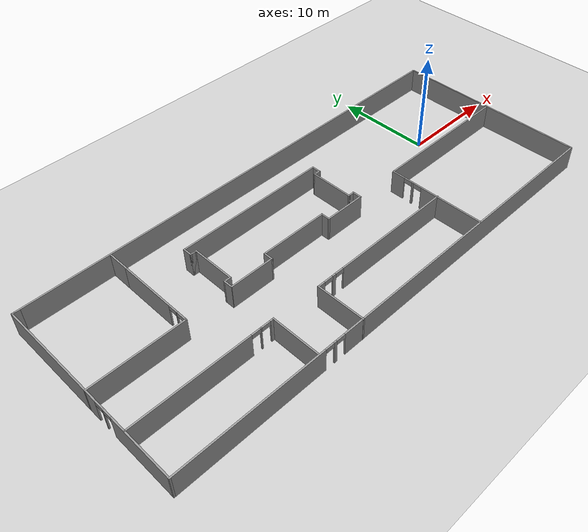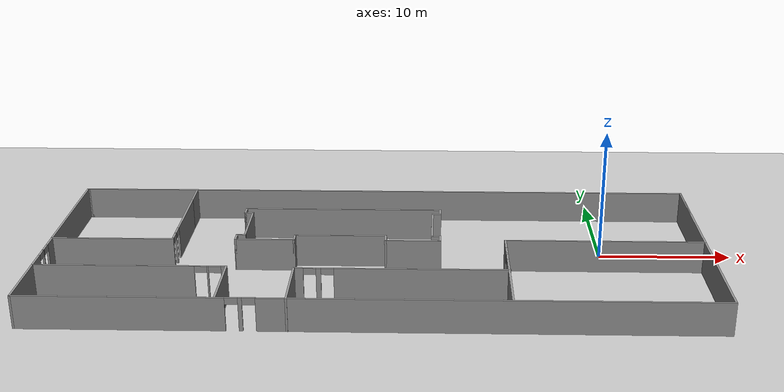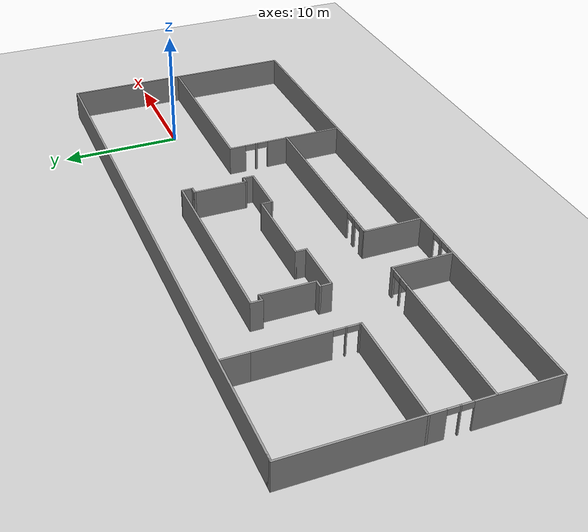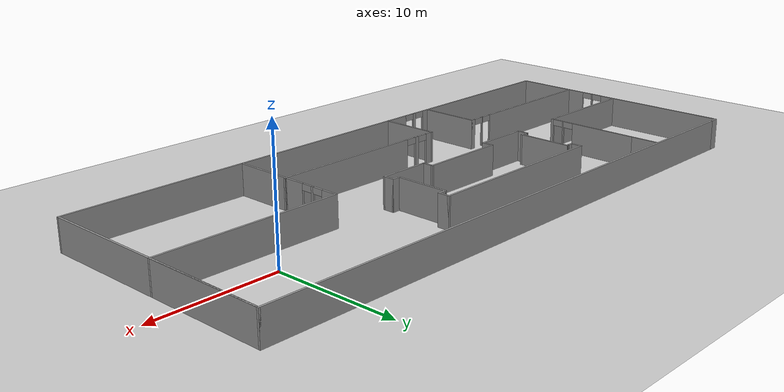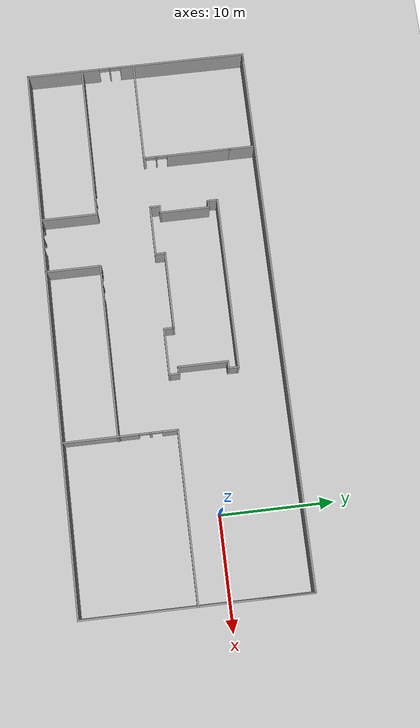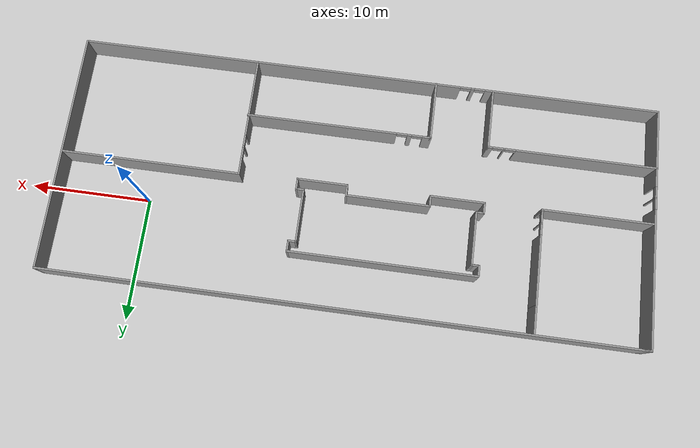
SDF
<sdf version="1.6">
 <world name="default">
  <model name="ground_plane">
   <static>1</static>
   <link name="link">
    <collision name="collision">
     <geometry><plane><normal>0 0 1</normal><size>100 100</size></plane></geometry>
     <surface><friction><ode><mu>100</mu><mu2>50</mu2></ode></friction></surface>
    </collision>
    <visual name="visual">
     <cast_shadows>0</cast_shadows>
     <geometry><plane><normal>0 0 1</normal><size>100 100</size></plane></geometry>
     <material>
      <script><uri>file://media/materials/scripts/gazebo.material</uri><name>Gazebo/Grey</name></script>
     </material>
    </visual>
   </link>
  </model>
  <model name="build1_0">
   <pose>-17.042 -2.82308 0 0 -0 0</pose>
   <link name="Wall_0">
    <collision name="Wall_0_Collision">
     <geometry><box><size>48.75 0.15 2.5</size></box></geometry>
     <pose>0 0 1.25 0 -0 0</pose>
    </collision>
    <visual name="Wall_0_Visual">
     <pose>0 0 1.25 0 -0 0</pose>
     <geometry><box><size>48.75 0.15 2.5</size></box></geometry>
     <material>
      <script><uri>file://media/materials/scripts/gazebo.material</uri><name>Gazebo/Grey</name></script>
      <ambient>1 1 1 1</ambient>
     </material>
    </visual>
    <pose>0.128151 9.93761 0 0 -0 0</pose>
   </link>
   <link name="Wall_10">
    <collision name="Wall_10_Collision">
     <geometry><box><size>0.75 0.15 2.5</size></box></geometry>
     <pose>0 0 1.25 0 -0 0</pose>
    </collision>
    <visual name="Wall_10_Visual">
     <pose>0 0 1.25 0 -0 0</pose>
     <geometry><box><size>0.75 0.15 2.5</size></box></geometry>
     <material>
      <script><uri>file://media/materials/scripts/gazebo.material</uri><name>Gazebo/Grey</name></script>
      <ambient>1 1 1 1</ambient>
     </material>
    </visual>
    <pose>-24.1218 9.93761 0 0 -0 0</pose>
   </link>
   <link name="Wall_101">
    <collision name="Wall_101_Collision">
     <geometry><box><size>10 0.15 2.5</size></box></geometry>
     <pose>0 0 1.25 0 -0 0</pose>
    </collision>
    <visual name="Wall_101_Visual">
     <pose>0 0 1.25 0 -0 0</pose>
     <geometry><box><size>10 0.15 2.5</size></box></geometry>
     <material>
      <script><uri>file://media/materials/scripts/gazebo.material</uri><name>Gazebo/Grey</name></script>
      <ambient>1 1 1 1</ambient>
     </material>
    </visual>
    <pose>24.4281 5.01261 0 0 0 -1.5708</pose>
   </link>
   <link name="Wall_102">
    <collision name="Wall_102_Collision">
     <geometry><box><size>15 0.15 2.5</size></box></geometry>
     <pose>0 0 1.25 0 -0 0</pose>
    </collision>
    <visual name="Wall_102_Visual">
     <pose>0 0 1.25 0 -0 0</pose>
     <geometry><box><size>15 0.15 2.5</size></box></geometry>
     <material>
      <script><uri>file://media/materials/scripts/gazebo.material</uri><name>Gazebo/Grey</name></script>
      <ambient>1 1 1 1</ambient>
     </material>
    </visual>
    <pose>17.0032 0.087612 0 0 -0 3.14159</pose>
   </link>
   <link name="Wall_103">
    <pose>9.57815 -2.46239 0 0 0 -1.5708</pose>
    <visual name="Wall_103_Visual_0">
     <pose>-1.90662 0 1.25 0 -0 0</pose>
     <geometry><box><size>1.43676 0.15 2.5</size></box></geometry>
     <material>
      <script><uri>file://media/materials/scripts/gazebo.material</uri><name>Gazebo/Grey</name></script>
      <ambient>1 1 1 1</ambient>
     </material>
    </visual>
    <collision name="Wall_103_Collision_0">
     <geometry><box><size>1.43676 0.15 2.5</size></box></geometry>
     <pose>-1.90662 0 1.25 0 -0 0</pose>
    </collision>
    <visual name="Wall_103_Visual_1">
     <pose>-0.188989 0 1.25 0 -0 0</pose>
     <geometry><box><size>0.198503 0.15 2.5</size></box></geometry>
     <material>
      <script><uri>file://media/materials/scripts/gazebo.material</uri><name>Gazebo/Grey</name></script>
      <ambient>1 1 1 1</ambient>
     </material>
    </visual>
    <collision name="Wall_103_Collision_1">
     <geometry><box><size>0.198503 0.15 2.5</size></box></geometry>
     <pose>-0.188989 0 1.25 0 -0 0</pose>
    </collision>
    <visual name="Wall_103_Visual_2">
     <pose>1.71763 0 1.25 0 -0 0</pose>
     <geometry><box><size>1.81474 0.15 2.5</size></box></geometry>
     <material>
      <script><uri>file://media/materials/scripts/gazebo.material</uri><name>Gazebo/Grey</name></script>
      <ambient>1 1 1 1</ambient>
     </material>
    </visual>
    <collision name="Wall_103_Collision_2">
     <geometry><box><size>1.81474 0.15 2.5</size></box></geometry>
     <pose>1.71763 0 1.25 0 -0 0</pose>
    </collision>
    <visual name="Wall_103_Visual_3">
     <pose>-0.73824 0 2.25 0 -0 0</pose>
     <geometry><box><size>0.9 0.15 0.5</size></box></geometry>
     <material>
      <script><uri>file://media/materials/scripts/gazebo.material</uri><name>Gazebo/Grey</name></script>
      <ambient>1 1 1 1</ambient>
     </material>
    </visual>
    <collision name="Wall_103_Collision_3">
     <geometry><box><size>0.9 0.15 0.5</size></box></geometry>
     <pose>-0.73824 0 2.25 0 -0 0</pose>
    </collision>
    <visual name="Wall_103_Visual_4">
     <pose>0.360263 0 2.25 0 -0 0</pose>
     <geometry><box><size>0.9 0.15 0.5</size></box></geometry>
     <material>
      <script><uri>file://media/materials/scripts/gazebo.material</uri><name>Gazebo/Grey</name></script>
      <ambient>1 1 1 1</ambient>
     </material>
    </visual>
    <collision name="Wall_103_Collision_4">
     <geometry><box><size>0.9 0.15 0.5</size></box></geometry>
     <pose>0.360263 0 2.25 0 -0 0</pose>
    </collision>
   </link>
   <link name="Wall_105">
    <pose>1.96209 -5.08761 0 0 -0 0</pose>
    <visual name="Wall_105_Visual_0">
     <pose>-7.37124 0 1.25 0 -0 0</pose>
     <geometry><box><size>0.757518 0.15 2.5</size></box></geometry>
     <material>
      <script><uri>file://media/materials/scripts/gazebo.material</uri><name>Gazebo/Grey</name></script>
      <ambient>1 1 1 1</ambient>
     </material>
    </visual>
    <collision name="Wall_105_Collision_0">
     <geometry><box><size>0.757518 0.15 2.5</size></box></geometry>
     <pose>-7.37124 0 1.25 0 -0 0</pose>
    </collision>
    <visual name="Wall_105_Visual_1">
     <pose>-5.91186 0 1.25 0 -0 0</pose>
     <geometry><box><size>0.361245 0.15 2.5</size></box></geometry>
     <material>
      <script><uri>file://media/materials/scripts/gazebo.material</uri><name>Gazebo/Grey</name></script>
      <ambient>1 1 1 1</ambient>
     </material>
    </visual>
    <collision name="Wall_105_Collision_1">
     <geometry><box><size>0.361245 0.15 2.5</size></box></geometry>
     <pose>-5.91186 0 1.25 0 -0 0</pose>
    </collision>
    <visual name="Wall_105_Visual_2">
     <pose>1.45938 0 1.25 0 -0 0</pose>
     <geometry><box><size>12.5812 0.15 2.5</size></box></geometry>
     <material>
      <script><uri>file://media/materials/scripts/gazebo.material</uri><name>Gazebo/Grey</name></script>
      <ambient>1 1 1 1</ambient>
     </material>
    </visual>
    <collision name="Wall_105_Collision_2">
     <geometry><box><size>12.5812 0.15 2.5</size></box></geometry>
     <pose>1.45938 0 1.25 0 -0 0</pose>
    </collision>
    <visual name="Wall_105_Visual_3">
     <pose>-6.54248 0 2.25 0 -0 0</pose>
     <geometry><box><size>0.9 0.15 0.5</size></box></geometry>
     <material>
      <script><uri>file://media/materials/scripts/gazebo.material</uri><name>Gazebo/Grey</name></script>
      <ambient>1 1 1 1</ambient>
     </material>
    </visual>
    <collision name="Wall_105_Collision_3">
     <geometry><box><size>0.9 0.15 0.5</size></box></geometry>
     <pose>-6.54248 0 2.25 0 -0 0</pose>
    </collision>
    <visual name="Wall_105_Visual_4">
     <pose>-5.28124 0 2.25 0 -0 0</pose>
     <geometry><box><size>0.9 0.15 0.5</size></box></geometry>
     <material>
      <script><uri>file://media/materials/scripts/gazebo.material</uri><name>Gazebo/Grey</name></script>
      <ambient>1 1 1 1</ambient>
     </material>
    </visual>
    <collision name="Wall_105_Collision_4">
     <geometry><box><size>0.9 0.15 0.5</size></box></geometry>
     <pose>-5.28124 0 2.25 0 -0 0</pose>
    </collision>
   </link>
   <link name="Wall_14">
    <collision name="Wall_14_Collision">
     <geometry><box><size>9.25 0.15 2.5</size></box></geometry>
     <pose>0 0 1.25 0 -0 0</pose>
    </collision>
    <visual name="Wall_14_Visual">
     <pose>0 0 1.25 0 -0 0</pose>
     <geometry><box><size>9.25 0.15 2.5</size></box></geometry>
     <material>
      <script><uri>file://media/materials/scripts/gazebo.material</uri><name>Gazebo/Grey</name></script>
      <ambient>1 1 1 1</ambient>
     </material>
    </visual>
    <pose>-19.8782 -0.176763 0 0 -0 3.14159</pose>
   </link>
   <link name="Wall_16">
    <pose>-15.3282 3.74824 0 0 -0 1.5708</pose>
    <visual name="Wall_16_Visual_0">
     <pose>-3.87767 0 1.25 0 -0 0</pose>
     <geometry><box><size>0.244662 0.15 2.5</size></box></geometry>
     <material>
      <script><uri>file://media/materials/scripts/gazebo.material</uri><name>Gazebo/Grey</name></script>
      <ambient>1 1 1 1</ambient>
     </material>
    </visual>
    <collision name="Wall_16_Collision_0">
     <geometry><box><size>0.244662 0.15 2.5</size></box></geometry>
     <pose>-3.87767 0 1.25 0 -0 0</pose>
    </collision>
    <visual name="Wall_16_Visual_1">
     <pose>-2.79773 0 1.25 0 -0 0</pose>
     <geometry><box><size>0.11521 0.15 2.5</size></box></geometry>
     <material>
      <script><uri>file://media/materials/scripts/gazebo.material</uri><name>Gazebo/Grey</name></script>
      <ambient>1 1 1 1</ambient>
     </material>
    </visual>
    <collision name="Wall_16_Collision_1">
     <geometry><box><size>0.11521 0.15 2.5</size></box></geometry>
     <pose>-2.79773 0 1.25 0 -0 0</pose>
    </collision>
    <visual name="Wall_16_Visual_2">
     <pose>1.07994 0 1.25 0 -0 0</pose>
     <geometry><box><size>5.84013 0.15 2.5</size></box></geometry>
     <material>
      <script><uri>file://media/materials/scripts/gazebo.material</uri><name>Gazebo/Grey</name></script>
      <ambient>1 1 1 1</ambient>
     </material>
    </visual>
    <collision name="Wall_16_Collision_2">
     <geometry><box><size>5.84013 0.15 2.5</size></box></geometry>
     <pose>1.07994 0 1.25 0 -0 0</pose>
    </collision>
    <visual name="Wall_16_Visual_3">
     <pose>-3.30534 0 2.25 0 -0 0</pose>
     <geometry><box><size>0.9 0.15 0.5</size></box></geometry>
     <material>
      <script><uri>file://media/materials/scripts/gazebo.material</uri><name>Gazebo/Grey</name></script>
      <ambient>1 1 1 1</ambient>
     </material>
    </visual>
    <collision name="Wall_16_Collision_3">
     <geometry><box><size>0.9 0.15 0.5</size></box></geometry>
     <pose>-3.30534 0 2.25 0 -0 0</pose>
    </collision>
    <visual name="Wall_16_Visual_4">
     <pose>-2.29013 0 2.25 0 -0 0</pose>
     <geometry><box><size>0.9 0.15 0.5</size></box></geometry>
     <material>
      <script><uri>file://media/materials/scripts/gazebo.material</uri><name>Gazebo/Grey</name></script>
      <ambient>1 1 1 1</ambient>
     </material>
    </visual>
    <collision name="Wall_16_Collision_4">
     <geometry><box><size>0.9 0.15 0.5</size></box></geometry>
     <pose>-2.29013 0 2.25 0 -0 0</pose>
    </collision>
   </link>
   <link name="Wall_19">
    <collision name="Wall_19_Collision">
     <geometry><box><size>2.25 0.15 2.5</size></box></geometry>
     <pose>0 0 1.25 0 -0 0</pose>
    </collision>
    <visual name="Wall_19_Visual">
     <pose>0 0 1.25 0 -0 0</pose>
     <geometry><box><size>2.25 0.15 2.5</size></box></geometry>
     <material>
      <script><uri>file://media/materials/scripts/gazebo.material</uri><name>Gazebo/Grey</name></script>
      <ambient>1 1 1 1</ambient>
     </material>
    </visual>
    <pose>-15.3282 8.72324 0 0 -0 1.5708</pose>
   </link>
   <link name="Wall_21">
    <pose>-17.4625 -4.93332 0 0 -0 0</pose>
    <visual name="Wall_21_Visual_0">
     <pose>-1.1775 0 1.25 0 -0 0</pose>
     <geometry><box><size>11.645 0.15 2.5</size></box></geometry>
     <material>
      <script><uri>file://media/materials/scripts/gazebo.material</uri><name>Gazebo/Grey</name></script>
      <ambient>1 1 1 1</ambient>
     </material>
    </visual>
    <collision name="Wall_21_Collision_0">
     <geometry><box><size>11.645 0.15 2.5</size></box></geometry>
     <pose>-1.1775 0 1.25 0 -0 0</pose>
    </collision>
    <visual name="Wall_21_Visual_1">
     <pose>5.6026 0 1.25 0 -0 0</pose>
     <geometry><box><size>0.115209 0.15 2.5</size></box></geometry>
     <material>
      <script><uri>file://media/materials/scripts/gazebo.material</uri><name>Gazebo/Grey</name></script>
      <ambient>1 1 1 1</ambient>
     </material>
    </visual>
    <collision name="Wall_21_Collision_1">
     <geometry><box><size>0.115209 0.15 2.5</size></box></geometry>
     <pose>5.6026 0 1.25 0 -0 0</pose>
    </collision>
    <visual name="Wall_21_Visual_2">
     <pose>6.7801 0 1.25 0 -0 0</pose>
     <geometry><box><size>0.439798 0.15 2.5</size></box></geometry>
     <material>
      <script><uri>file://media/materials/scripts/gazebo.material</uri><name>Gazebo/Grey</name></script>
      <ambient>1 1 1 1</ambient>
     </material>
    </visual>
    <collision name="Wall_21_Collision_2">
     <geometry><box><size>0.439798 0.15 2.5</size></box></geometry>
     <pose>6.7801 0 1.25 0 -0 0</pose>
    </collision>
    <visual name="Wall_21_Visual_3">
     <pose>5.09499 0 2.25 0 -0 0</pose>
     <geometry><box><size>0.9 0.15 0.5</size></box></geometry>
     <material>
      <script><uri>file://media/materials/scripts/gazebo.material</uri><name>Gazebo/Grey</name></script>
      <ambient>1 1 1 1</ambient>
     </material>
    </visual>
    <collision name="Wall_21_Collision_3">
     <geometry><box><size>0.9 0.15 0.5</size></box></geometry>
     <pose>5.09499 0 2.25 0 -0 0</pose>
    </collision>
    <visual name="Wall_21_Visual_4">
     <pose>6.1102 0 2.25 0 -0 0</pose>
     <geometry><box><size>0.9 0.15 0.5</size></box></geometry>
     <material>
      <script><uri>file://media/materials/scripts/gazebo.material</uri><name>Gazebo/Grey</name></script>
      <ambient>1 1 1 1</ambient>
     </material>
    </visual>
    <collision name="Wall_21_Collision_4">
     <geometry><box><size>0.9 0.15 0.5</size></box></geometry>
     <pose>6.1102 0 2.25 0 -0 0</pose>
    </collision>
   </link>
   <link name="Wall_22">
    <collision name="Wall_22_Collision">
     <geometry><box><size>5 0.15 2.5</size></box></geometry>
     <pose>0 0 1.25 0 -0 0</pose>
    </collision>
    <visual name="Wall_22_Visual">
     <pose>0 0 1.25 0 -0 0</pose>
     <geometry><box><size>5 0.15 2.5</size></box></geometry>
     <material>
      <script><uri>file://media/materials/scripts/gazebo.material</uri><name>Gazebo/Grey</name></script>
      <ambient>1 1 1 1</ambient>
     </material>
    </visual>
    <pose>-10.5375 -7.35832 0 0 0 -1.5708</pose>
   </link>
   <link name="Wall_24">
    <collision name="Wall_24_Collision">
     <geometry><box><size>5 0.15 2.5</size></box></geometry>
     <pose>0 0 1.25 0 -0 0</pose>
    </collision>
    <visual name="Wall_24_Visual">
     <pose>0 0 1.25 0 -0 0</pose>
     <geometry><box><size>5 0.15 2.5</size></box></geometry>
     <material>
      <script><uri>file://media/materials/scripts/gazebo.material</uri><name>Gazebo/Grey</name></script>
      <ambient>1 1 1 1</ambient>
     </material>
    </visual>
    <pose>-5.71291 -7.51261 0 0 -0 1.5708</pose>
   </link>
   <link name="Wall_26">
    <collision name="Wall_26_Collision">
     <geometry><box><size>5 0.15 2.5</size></box></geometry>
     <pose>0 0 1.25 0 -0 0</pose>
    </collision>
    <visual name="Wall_26_Visual">
     <pose>0 0 1.25 0 -0 0</pose>
     <geometry><box><size>5 0.15 2.5</size></box></geometry>
     <material>
      <script><uri>file://media/materials/scripts/gazebo.material</uri><name>Gazebo/Grey</name></script>
      <ambient>1 1 1 1</ambient>
     </material>
    </visual>
    <pose>9.57927 -7.43124 0 0 0 -1.5708</pose>
   </link>
   <link name="Wall_69">
    <collision name="Wall_69_Collision">
     <geometry><box><size>4.5 0.15 2.5</size></box></geometry>
     <pose>0 0 1.25 0 -0 0</pose>
    </collision>
    <visual name="Wall_69_Visual">
     <pose>0 0 1.25 0 -0 0</pose>
     <geometry><box><size>4.5 0.15 2.5</size></box></geometry>
     <material>
      <script><uri>file://media/materials/scripts/gazebo.material</uri><name>Gazebo/Grey</name></script>
      <ambient>1 1 1 1</ambient>
     </material>
    </visual>
    <pose>-8.40817 -0.110852 0 0 -0 0</pose>
   </link>
   <link name="Wall_7">
    <collision name="Wall_7_Collision">
     <geometry><box><size>20 0.15 2.5</size></box></geometry>
     <pose>0 0 1.25 0 -0 0</pose>
    </collision>
    <visual name="Wall_7_Visual">
     <pose>0 0 1.25 0 -0 0</pose>
     <geometry><box><size>20 0.15 2.5</size></box></geometry>
     <material>
      <script><uri>file://media/materials/scripts/gazebo.material</uri><name>Gazebo/Grey</name></script>
      <ambient>1 1 1 1</ambient>
     </material>
    </visual>
    <pose>24.4281 0.012612 0 0 0 -1.5708</pose>
   </link>
   <link name="Wall_70">
    <collision name="Wall_70_Collision">
     <geometry><box><size>1 0.15 2.5</size></box></geometry>
     <pose>0 0 1.25 0 -0 0</pose>
    </collision>
    <visual name="Wall_70_Visual">
     <pose>0 0 1.25 0 -0 0</pose>
     <geometry><box><size>1 0.15 2.5</size></box></geometry>
     <material>
      <script><uri>file://media/materials/scripts/gazebo.material</uri><name>Gazebo/Grey</name></script>
      <ambient>1 1 1 1</ambient>
     </material>
    </visual>
    <pose>-6.23316 0.314148 0 0 -0 1.5708</pose>
   </link>
   <link name="Wall_78">
    <collision name="Wall_78_Collision">
     <geometry><box><size>0.75 0.15 2.5</size></box></geometry>
     <pose>0 0 1.25 0 -0 0</pose>
    </collision>
    <visual name="Wall_78_Visual">
     <pose>0 0 1.25 0 -0 0</pose>
     <geometry><box><size>0.75 0.15 2.5</size></box></geometry>
     <material>
      <script><uri>file://media/materials/scripts/gazebo.material</uri><name>Gazebo/Grey</name></script>
      <ambient>1 1 1 1</ambient>
     </material>
    </visual>
    <pose>4.41683 0.739148 0 0 -0 3.14159</pose>
   </link>
   <link name="Wall_79">
    <collision name="Wall_79_Collision">
     <geometry><box><size>4.5 0.15 2.5</size></box></geometry>
     <pose>0 0 1.25 0 -0 0</pose>
    </collision>
    <visual name="Wall_79_Visual">
     <pose>0 0 1.25 0 -0 0</pose>
     <geometry><box><size>4.5 0.15 2.5</size></box></geometry>
     <material>
      <script><uri>file://media/materials/scripts/gazebo.material</uri><name>Gazebo/Grey</name></script>
      <ambient>1 1 1 1</ambient>
     </material>
    </visual>
    <pose>4.11684 2.91415 0 0 -0 1.5708</pose>
   </link>
   <link name="Wall_8">
    <pose>0.003151 -9.91239 0 0 -0 3.14159</pose>
    <visual name="Wall_8_Visual_0">
     <pose>-8.35572 0 1.25 0 -0 0</pose>
     <geometry><box><size>32.2886 0.15 2.5</size></box></geometry>
     <material>
      <script><uri>file://media/materials/scripts/gazebo.material</uri><name>Gazebo/Grey</name></script>
      <ambient>1 1 1 1</ambient>
     </material>
    </visual>
    <collision name="Wall_8_Collision_0">
     <geometry><box><size>32.2886 0.15 2.5</size></box></geometry>
     <pose>-8.35572 0 1.25 0 -0 0</pose>
    </collision>
    <visual name="Wall_8_Visual_1">
     <pose>8.82849 0 1.25 0 -0 0</pose>
     <geometry><box><size>0.279873 0.15 2.5</size></box></geometry>
     <material>
      <script><uri>file://media/materials/scripts/gazebo.material</uri><name>Gazebo/Grey</name></script>
      <ambient>1 1 1 1</ambient>
     </material>
    </visual>
    <collision name="Wall_8_Collision_1">
     <geometry><box><size>0.279873 0.15 2.5</size></box></geometry>
     <pose>8.82849 0 1.25 0 -0 0</pose>
    </collision>
    <visual name="Wall_8_Visual_2">
     <pose>17.1842 0 1.25 0 -0 0</pose>
     <geometry><box><size>14.6316 0.15 2.5</size></box></geometry>
     <material>
      <script><uri>file://media/materials/scripts/gazebo.material</uri><name>Gazebo/Grey</name></script>
      <ambient>1 1 1 1</ambient>
     </material>
    </visual>
    <collision name="Wall_8_Collision_2">
     <geometry><box><size>14.6316 0.15 2.5</size></box></geometry>
     <pose>17.1842 0 1.25 0 -0 0</pose>
    </collision>
    <visual name="Wall_8_Visual_3">
     <pose>8.23855 0 2.25 0 -0 0</pose>
     <geometry><box><size>0.9 0.15 0.5</size></box></geometry>
     <material>
      <script><uri>file://media/materials/scripts/gazebo.material</uri><name>Gazebo/Grey</name></script>
      <ambient>1 1 1 1</ambient>
     </material>
    </visual>
    <collision name="Wall_8_Collision_3">
     <geometry><box><size>0.9 0.15 0.5</size></box></geometry>
     <pose>8.23855 0 2.25 0 -0 0</pose>
    </collision>
    <visual name="Wall_8_Visual_4">
     <pose>9.41842 0 2.25 0 -0 0</pose>
     <geometry><box><size>0.9 0.15 0.5</size></box></geometry>
     <material>
      <script><uri>file://media/materials/scripts/gazebo.material</uri><name>Gazebo/Grey</name></script>
      <ambient>1 1 1 1</ambient>
     </material>
    </visual>
    <collision name="Wall_8_Collision_4">
     <geometry><box><size>0.9 0.15 0.5</size></box></geometry>
     <pose>9.41842 0 2.25 0 -0 0</pose>
    </collision>
   </link>
   <link name="Wall_80">
    <collision name="Wall_80_Collision">
     <geometry><box><size>0.75 0.15 2.5</size></box></geometry>
     <pose>0 0 1.25 0 -0 0</pose>
    </collision>
    <visual name="Wall_80_Visual">
     <pose>0 0 1.25 0 -0 0</pose>
     <geometry><box><size>0.75 0.15 2.5</size></box></geometry>
     <material>
      <script><uri>file://media/materials/scripts/gazebo.material</uri><name>Gazebo/Grey</name></script>
      <ambient>1 1 1 1</ambient>
     </material>
    </visual>
    <pose>4.41683 5.08915 0 0 -0 0</pose>
   </link>
   <link name="Wall_81">
    <collision name="Wall_81_Collision">
     <geometry><box><size>1 0.15 2.5</size></box></geometry>
     <pose>0 0 1.25 0 -0 0</pose>
    </collision>
    <visual name="Wall_81_Visual">
     <pose>0 0 1.25 0 -0 0</pose>
     <geometry><box><size>1 0.15 2.5</size></box></geometry>
     <material>
      <script><uri>file://media/materials/scripts/gazebo.material</uri><name>Gazebo/Grey</name></script>
      <ambient>1 1 1 1</ambient>
     </material>
    </visual>
    <pose>4.71683 5.51415 0 0 -0 1.5708</pose>
   </link>
   <link name="Wall_82">
    <collision name="Wall_82_Collision">
     <geometry><box><size>15.5 0.15 2.5</size></box></geometry>
     <pose>0 0 1.25 0 -0 0</pose>
    </collision>
    <visual name="Wall_82_Visual">
     <pose>0 0 1.25 0 -0 0</pose>
     <geometry><box><size>15.5 0.15 2.5</size></box></geometry>
     <material>
      <script><uri>file://media/materials/scripts/gazebo.material</uri><name>Gazebo/Grey</name></script>
      <ambient>1 1 1 1</ambient>
     </material>
    </visual>
    <pose>-2.95817 5.93915 0 0 -0 3.14159</pose>
   </link>
   <link name="Wall_84">
    <collision name="Wall_84_Collision">
     <geometry><box><size>1 0.15 2.5</size></box></geometry>
     <pose>0 0 1.25 0 -0 0</pose>
    </collision>
    <visual name="Wall_84_Visual">
     <pose>0 0 1.25 0 -0 0</pose>
     <geometry><box><size>1 0.15 2.5</size></box></geometry>
     <material>
      <script><uri>file://media/materials/scripts/gazebo.material</uri><name>Gazebo/Grey</name></script>
      <ambient>1 1 1 1</ambient>
     </material>
    </visual>
    <pose>-10.6332 5.51415 0 0 0 -1.5708</pose>
   </link>
   <link name="Wall_85">
    <collision name="Wall_85_Collision">
     <geometry><box><size>0.5 0.15 2.5</size></box></geometry>
     <pose>0 0 1.25 0 -0 0</pose>
    </collision>
    <visual name="Wall_85_Visual">
     <pose>0 0 1.25 0 -0 0</pose>
     <geometry><box><size>0.5 0.15 2.5</size></box></geometry>
     <material>
      <script><uri>file://media/materials/scripts/gazebo.material</uri><name>Gazebo/Grey</name></script>
      <ambient>1 1 1 1</ambient>
     </material>
    </visual>
    <pose>-10.4582 5.08915 0 0 -0 0</pose>
   </link>
   <link name="Wall_87">
    <collision name="Wall_87_Collision">
     <geometry><box><size>0.75 0.15 2.5</size></box></geometry>
     <pose>0 0 1.25 0 -0 0</pose>
    </collision>
    <visual name="Wall_87_Visual">
     <pose>0 0 1.25 0 -0 0</pose>
     <geometry><box><size>0.75 0.15 2.5</size></box></geometry>
     <material>
      <script><uri>file://media/materials/scripts/gazebo.material</uri><name>Gazebo/Grey</name></script>
      <ambient>1 1 1 1</ambient>
     </material>
    </visual>
    <pose>-10.3332 5.08915 0 0 -0 0</pose>
   </link>
   <link name="Wall_88">
    <collision name="Wall_88_Collision">
     <geometry><box><size>4.5 0.15 2.5</size></box></geometry>
     <pose>0 0 1.25 0 -0 0</pose>
    </collision>
    <visual name="Wall_88_Visual">
     <pose>0 0 1.25 0 -0 0</pose>
     <geometry><box><size>4.5 0.15 2.5</size></box></geometry>
     <material>
      <script><uri>file://media/materials/scripts/gazebo.material</uri><name>Gazebo/Grey</name></script>
      <ambient>1 1 1 1</ambient>
     </material>
    </visual>
    <pose>-10.0332 2.91415 0 0 0 -1.5708</pose>
   </link>
   <link name="Wall_89">
    <collision name="Wall_89_Collision">
     <geometry><box><size>0.75 0.15 2.5</size></box></geometry>
     <pose>0 0 1.25 0 -0 0</pose>
    </collision>
    <visual name="Wall_89_Visual">
     <pose>0 0 1.25 0 -0 0</pose>
     <geometry><box><size>0.75 0.15 2.5</size></box></geometry>
     <material>
      <script><uri>file://media/materials/scripts/gazebo.material</uri><name>Gazebo/Grey</name></script>
      <ambient>1 1 1 1</ambient>
     </material>
    </visual>
    <pose>-10.3332 0.739148 0 0 -0 3.14159</pose>
   </link>
   <link name="Wall_9">
    <pose>-24.4218 0.012612 0 0 -0 1.5708</pose>
    <visual name="Wall_9_Visual_0">
     <pose>-6.68083 0 1.25 0 -0 0</pose>
     <geometry><box><size>6.63833 0.15 2.5</size></box></geometry>
     <material>
      <script><uri>file://media/materials/scripts/gazebo.material</uri><name>Gazebo/Grey</name></script>
      <ambient>1 1 1 1</ambient>
     </material>
    </visual>
    <collision name="Wall_9_Collision_0">
     <geometry><box><size>6.63833 0.15 2.5</size></box></geometry>
     <pose>-6.68083 0 1.25 0 -0 0</pose>
    </collision>
    <visual name="Wall_9_Visual_1">
     <pose>-2.4031 0 1.25 0 -0 0</pose>
     <geometry><box><size>0.117133 0.15 2.5</size></box></geometry>
     <material>
      <script><uri>file://media/materials/scripts/gazebo.material</uri><name>Gazebo/Grey</name></script>
      <ambient>1 1 1 1</ambient>
     </material>
    </visual>
    <collision name="Wall_9_Collision_1">
     <geometry><box><size>0.117133 0.15 2.5</size></box></geometry>
     <pose>-2.4031 0 1.25 0 -0 0</pose>
    </collision>
    <visual name="Wall_9_Visual_2">
     <pose>4.27773 0 1.25 0 -0 0</pose>
     <geometry><box><size>11.4445 0.15 2.5</size></box></geometry>
     <material>
      <script><uri>file://media/materials/scripts/gazebo.material</uri><name>Gazebo/Grey</name></script>
      <ambient>1 1 1 1</ambient>
     </material>
    </visual>
    <collision name="Wall_9_Collision_2">
     <geometry><box><size>11.4445 0.15 2.5</size></box></geometry>
     <pose>4.27773 0 1.25 0 -0 0</pose>
    </collision>
    <visual name="Wall_9_Visual_3">
     <pose>-2.91167 0 2.25 0 -0 0</pose>
     <geometry><box><size>0.9 0.15 0.5</size></box></geometry>
     <material>
      <script><uri>file://media/materials/scripts/gazebo.material</uri><name>Gazebo/Grey</name></script>
      <ambient>1 1 1 1</ambient>
     </material>
    </visual>
    <collision name="Wall_9_Collision_3">
     <geometry><box><size>0.9 0.15 0.5</size></box></geometry>
     <pose>-2.91167 0 2.25 0 -0 0</pose>
    </collision>
    <visual name="Wall_9_Visual_4">
     <pose>-1.89453 0 2.25 0 -0 0</pose>
     <geometry><box><size>0.9 0.15 0.5</size></box></geometry>
     <material>
      <script><uri>file://media/materials/scripts/gazebo.material</uri><name>Gazebo/Grey</name></script>
      <ambient>1 1 1 1</ambient>
     </material>
    </visual>
    <collision name="Wall_9_Collision_4">
     <geometry><box><size>0.9 0.15 0.5</size></box></geometry>
     <pose>-1.89453 0 2.25 0 -0 0</pose>
    </collision>
   </link>
   <link name="Wall_92">
    <collision name="Wall_92_Collision">
     <geometry><box><size>1 0.15 2.5</size></box></geometry>
     <pose>0 0 1.25 0 -0 0</pose>
    </collision>
    <visual name="Wall_92_Visual">
     <pose>0 0 1.25 0 -0 0</pose>
     <geometry><box><size>1 0.15 2.5</size></box></geometry>
     <material>
      <script><uri>file://media/materials/scripts/gazebo.material</uri><name>Gazebo/Grey</name></script>
      <ambient>1 1 1 1</ambient>
     </material>
    </visual>
    <pose>-10.6332 0.314148 0 0 0 -1.5708</pose>
   </link>
   <link name="Wall_96">
    <collision name="Wall_96_Collision">
     <geometry><box><size>1 0.15 2.5</size></box></geometry>
     <pose>0 0 1.25 0 -0 0</pose>
    </collision>
    <visual name="Wall_96_Visual">
     <pose>0 0 1.25 0 -0 0</pose>
     <geometry><box><size>1 0.15 2.5</size></box></geometry>
     <material>
      <script><uri>file://media/materials/scripts/gazebo.material</uri><name>Gazebo/Grey</name></script>
      <ambient>1 1 1 1</ambient>
     </material>
    </visual>
    <pose>4.71683 0.314148 0 0 0 -1.5708</pose>
   </link>
   <link name="Wall_97">
    <collision name="Wall_97_Collision">
     <geometry><box><size>4.25 0.15 2.5</size></box></geometry>
     <pose>0 0 1.25 0 -0 0</pose>
    </collision>
    <visual name="Wall_97_Visual">
     <pose>0 0 1.25 0 -0 0</pose>
     <geometry><box><size>4.25 0.15 2.5</size></box></geometry>
     <material>
      <script><uri>file://media/materials/scripts/gazebo.material</uri><name>Gazebo/Grey</name></script>
      <ambient>1 1 1 1</ambient>
     </material>
    </visual>
    <pose>2.66683 -0.110852 0 0 -0 3.14159</pose>
   </link>
   <link name="Wall_98">
    <collision name="Wall_98_Collision">
     <geometry><box><size>1 0.15 2.5</size></box></geometry>
     <pose>0 0 1.25 0 -0 0</pose>
    </collision>
    <visual name="Wall_98_Visual">
     <pose>0 0 1.25 0 -0 0</pose>
     <geometry><box><size>1 0.15 2.5</size></box></geometry>
     <material>
      <script><uri>file://media/materials/scripts/gazebo.material</uri><name>Gazebo/Grey</name></script>
      <ambient>1 1 1 1</ambient>
     </material>
    </visual>
    <pose>0.616835 0.314148 0 0 -0 1.5708</pose>
   </link>
   <link name="Wall_99">
    <collision name="Wall_99_Collision">
     <geometry><box><size>7 0.15 2.5</size></box></geometry>
     <pose>0 0 1.25 0 -0 0</pose>
    </collision>
    <visual name="Wall_99_Visual">
     <pose>0 0 1.25 0 -0 0</pose>
     <geometry><box><size>7 0.15 2.5</size></box></geometry>
     <material>
      <script><uri>file://media/materials/scripts/gazebo.material</uri><name>Gazebo/Grey</name></script>
      <ambient>1 1 1 1</ambient>
     </material>
    </visual>
    <pose>-2.80816 0.739148 0 0 -0 3.14159</pose>
   </link>
   <static>1</static>
  </model>
 </world>
</sdf>
